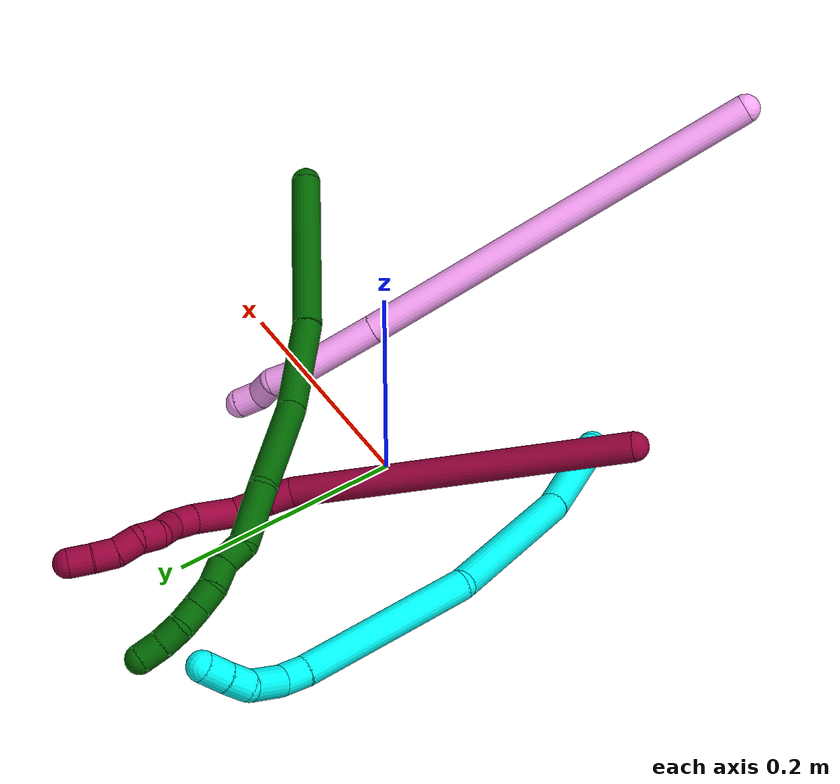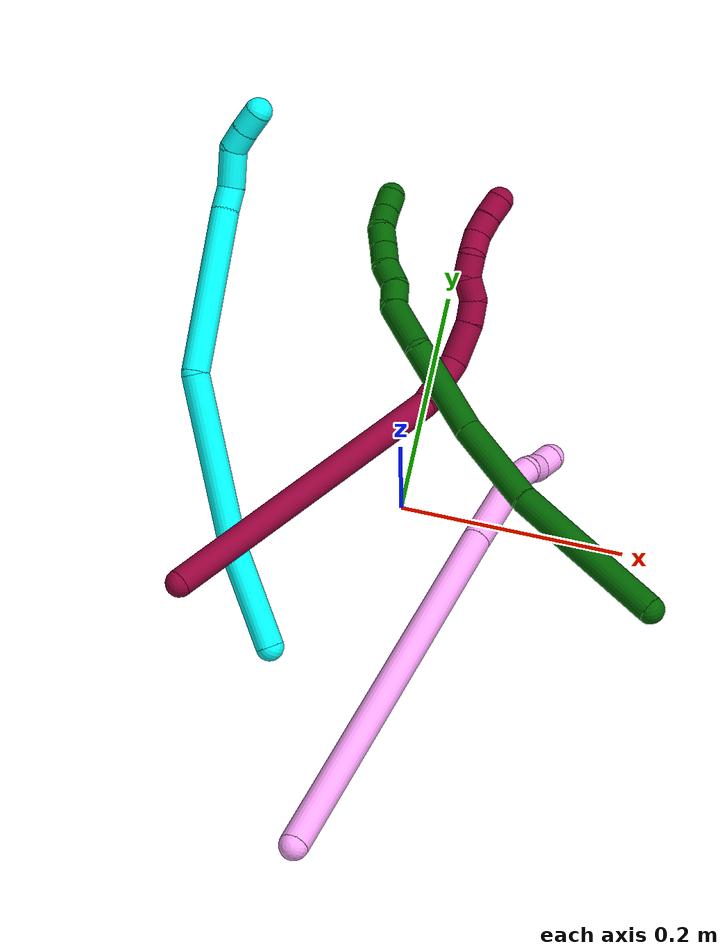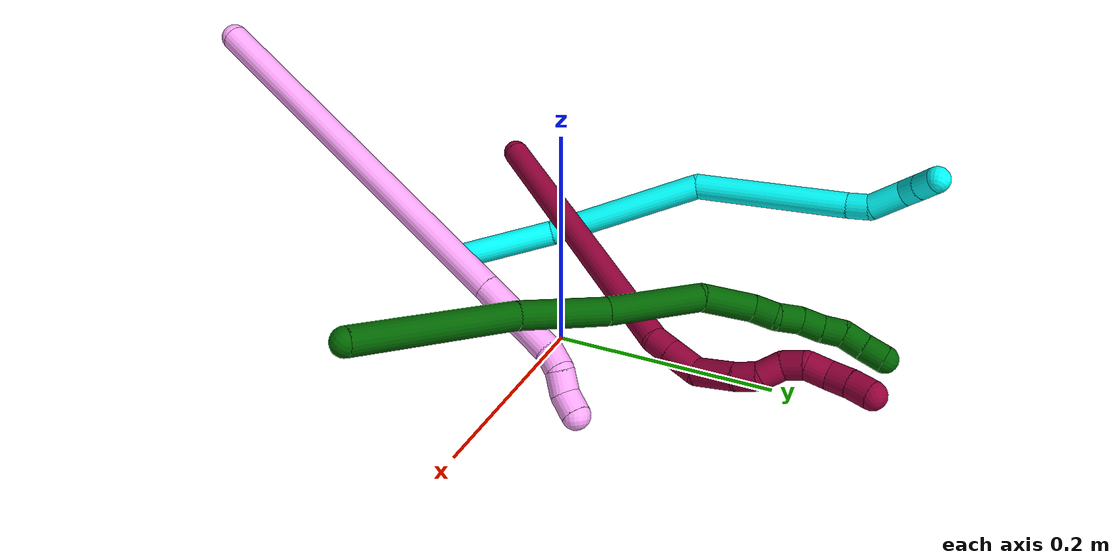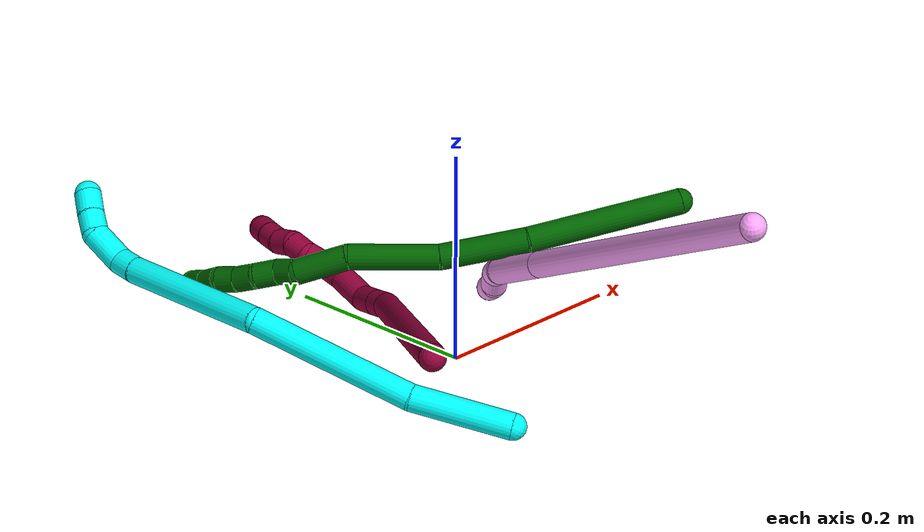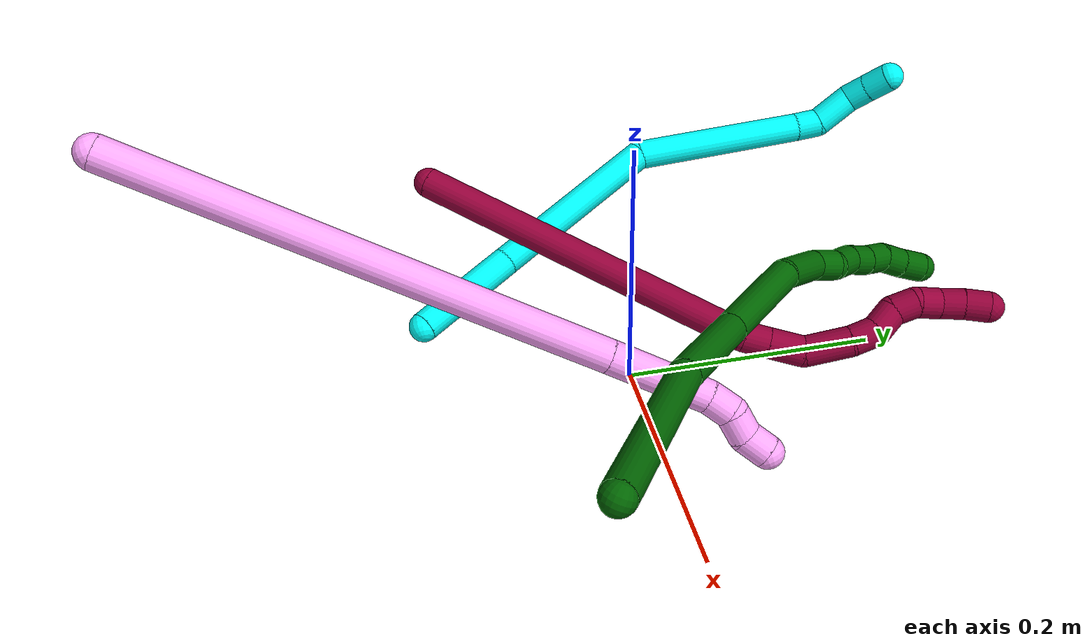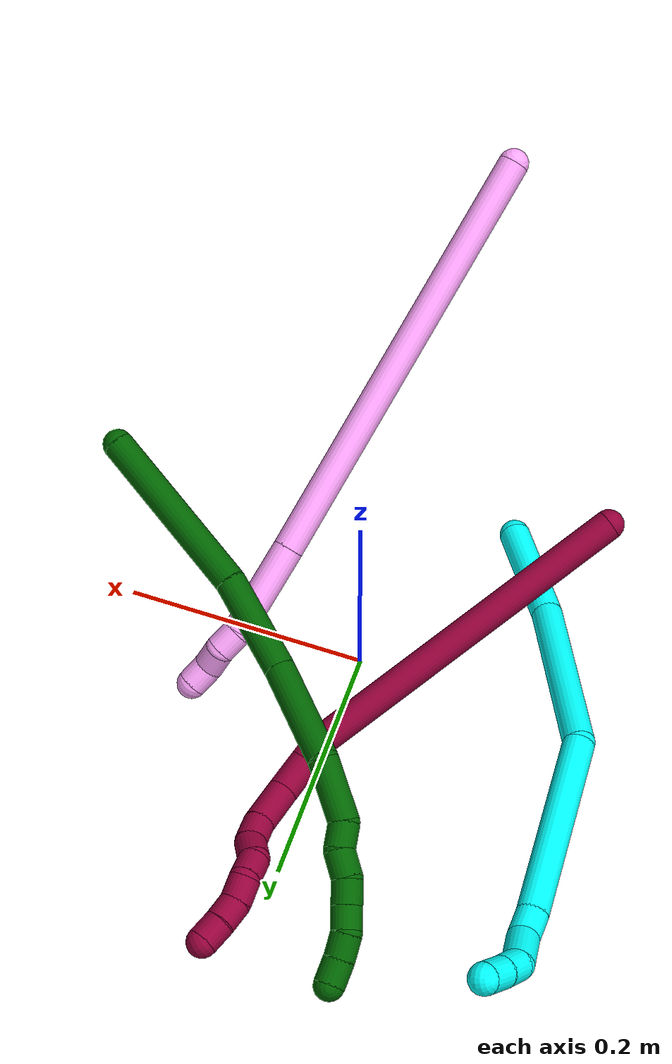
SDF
<sdf version="1.7">
 <world name="default">
  <model name="3">
   <static>0</static>
   <link name="3">
    <collision name="collision-cylinder-e_1_1_4">
     <pose>-0.010146 0.037655 0.026196 -0.96298 -0.217681 0.114067</pose>
     <geometry><cylinder><radius>0.0125</radius><length>0.093959</length></cylinder></geometry>
     <surface>
      <friction><ode><mu>1.16</mu><mu2>1.16</mu2><slip1>0</slip1><slip2>0</slip2></ode></friction>
      <contact><ode><kp>1e+06</kp><kd>1</kd><max_vel>0</max_vel><min_depth>0.001</min_depth></ode></contact>
     </surface>
    </collision>
    <visual name="visual-cylinder-e_1_1_4">
     <pose>-0.010146 0.037655 0.026196 -0.96298 -0.217681 0.114067</pose>
     <geometry><cylinder><radius>0.0125</radius><length>0.093959</length></cylinder></geometry>
     <material><ambient>0.003922 1 0.996078 1</ambient></material>
    </visual>
    <collision name="collision-cylinder-e_2_4_5">
     <pose>-0.023639 0.142238 0.09208 -1.03553 -0.042992 0.024491</pose>
     <geometry><cylinder><radius>0.0125</radius><length>0.155765</length></cylinder></geometry>
     <surface>
      <friction><ode><mu>1.16</mu><mu2>1.16</mu2><slip1>0</slip1><slip2>0</slip2></ode></friction>
      <contact><ode><kp>1e+06</kp><kd>1</kd><max_vel>0</max_vel><min_depth>0.001</min_depth></ode></contact>
     </surface>
    </collision>
    <visual name="visual-cylinder-e_2_4_5">
     <pose>-0.023639 0.142238 0.09208 -1.03553 -0.042992 0.024491</pose>
     <geometry><cylinder><radius>0.0125</radius><length>0.155765</length></cylinder></geometry>
     <material><ambient>0.003922 1 0.996078 1</ambient></material>
    </visual>
    <collision name="collision-cylinder-e_3_5_6">
     <pose>-0.037192 0.283541 0.136069 -1.51305 -0.13614 0.128518</pose>
     <geometry><cylinder><radius>0.0125</radius><length>0.15039</length></cylinder></geometry>
     <surface>
      <friction><ode><mu>1.16</mu><mu2>1.16</mu2><slip1>0</slip1><slip2>0</slip2></ode></friction>
      <contact><ode><kp>1e+06</kp><kd>1</kd><max_vel>0</max_vel><min_depth>0.001</min_depth></ode></contact>
     </surface>
    </collision>
    <visual name="visual-cylinder-e_3_5_6">
     <pose>-0.037192 0.283541 0.136069 -1.51305 -0.13614 0.128518</pose>
     <geometry><cylinder><radius>0.0125</radius><length>0.15039</length></cylinder></geometry>
     <material><ambient>0.003922 1 0.996078 1</ambient></material>
    </visual>
    <collision name="collision-cylinder-e_4_6_7">
     <pose>-0.047616 0.368954 0.140711 -1.53979 -0.019822 0.019216</pose>
     <geometry><cylinder><radius>0.0125</radius><length>0.022091</length></cylinder></geometry>
     <surface>
      <friction><ode><mu>1.16</mu><mu2>1.16</mu2><slip1>0</slip1><slip2>0</slip2></ode></friction>
      <contact><ode><kp>1e+06</kp><kd>1</kd><max_vel>0</max_vel><min_depth>0.001</min_depth></ode></contact>
     </surface>
    </collision>
    <visual name="visual-cylinder-e_4_6_7">
     <pose>-0.047616 0.368954 0.140711 -1.53979 -0.019822 0.019216</pose>
     <geometry><cylinder><radius>0.0125</radius><length>0.022091</length></cylinder></geometry>
     <material><ambient>0.003922 1 0.996078 1</ambient></material>
    </visual>
    <collision name="collision-cylinder-e_5_7_8">
     <pose>-0.042788 0.39557 0.147609 -1.17247 0.290194 -0.193481</pose>
     <geometry><cylinder><radius>0.0125</radius><length>0.035278</length></cylinder></geometry>
     <surface>
      <friction><ode><mu>1.16</mu><mu2>1.16</mu2><slip1>0</slip1><slip2>0</slip2></ode></friction>
      <contact><ode><kp>1e+06</kp><kd>1</kd><max_vel>0</max_vel><min_depth>0.001</min_depth></ode></contact>
     </surface>
    </collision>
    <visual name="visual-cylinder-e_5_7_8">
     <pose>-0.042788 0.39557 0.147609 -1.17247 0.290194 -0.193481</pose>
     <geometry><cylinder><radius>0.0125</radius><length>0.035278</length></cylinder></geometry>
     <material><ambient>0.003922 1 0.996078 1</ambient></material>
    </visual>
    <collision name="collision-cylinder-e_6_8_9">
     <pose>-0.031411 0.419367 0.154157 -1.57173 0.656287 -0.656855</pose>
     <geometry><cylinder><radius>0.0125</radius><length>0.020748</length></cylinder></geometry>
     <surface>
      <friction><ode><mu>1.16</mu><mu2>1.16</mu2><slip1>0</slip1><slip2>0</slip2></ode></friction>
      <contact><ode><kp>1e+06</kp><kd>1</kd><max_vel>0</max_vel><min_depth>0.001</min_depth></ode></contact>
     </surface>
    </collision>
    <visual name="visual-cylinder-e_6_8_9">
     <pose>-0.031411 0.419367 0.154157 -1.57173 0.656287 -0.656855</pose>
     <geometry><cylinder><radius>0.0125</radius><length>0.020748</length></cylinder></geometry>
     <material><ambient>0.003922 1 0.996078 1</ambient></material>
    </visual>
    <collision name="collision-cylinder-e_7_9_2">
     <pose>-0.01798 0.435822 0.153676 -1.62825 0.71075 -0.749075</pose>
     <geometry><cylinder><radius>0.0125</radius><length>0.021769</length></cylinder></geometry>
     <surface>
      <friction><ode><mu>1.16</mu><mu2>1.16</mu2><slip1>0</slip1><slip2>0</slip2></ode></friction>
      <contact><ode><kp>1e+06</kp><kd>1</kd><max_vel>0</max_vel><min_depth>0.001</min_depth></ode></contact>
     </surface>
    </collision>
    <visual name="visual-cylinder-e_7_9_2">
     <pose>-0.01798 0.435822 0.153676 -1.62825 0.71075 -0.749075</pose>
     <geometry><cylinder><radius>0.0125</radius><length>0.021769</length></cylinder></geometry>
     <material><ambient>0.003922 1 0.996078 1</ambient></material>
    </visual>
    <collision name="collision-sphere-2">
     <pose>-0.010879 0.444057 0.153202 0 -0 0</pose>
     <geometry><sphere><radius>0.0125</radius></sphere></geometry>
     <surface>
      <friction><ode><mu>1.16</mu><mu2>1.16</mu2><slip1>0</slip1><slip2>0</slip2></ode></friction>
      <contact><ode><kp>1e+06</kp><kd>1</kd><max_vel>0</max_vel><min_depth>0.001</min_depth></ode></contact>
     </surface>
    </collision>
    <visual name="visual-sphere-2">
     <pose>-0.010879 0.444057 0.153202 0 -0 0</pose>
     <geometry><sphere><radius>0.0125</radius></sphere></geometry>
     <material><ambient>0.003922 1 0.996078 1</ambient></material>
    </visual>
    <collision name="collision-sphere-9">
     <pose>-0.025081 0.427586 0.154149 0 -0 0</pose>
     <geometry><sphere><radius>0.0125</radius></sphere></geometry>
     <surface>
      <friction><ode><mu>1.16</mu><mu2>1.16</mu2><slip1>0</slip1><slip2>0</slip2></ode></friction>
      <contact><ode><kp>1e+06</kp><kd>1</kd><max_vel>0</max_vel><min_depth>0.001</min_depth></ode></contact>
     </surface>
    </collision>
    <visual name="visual-sphere-9">
     <pose>-0.025081 0.427586 0.154149 0 -0 0</pose>
     <geometry><sphere><radius>0.0125</radius></sphere></geometry>
     <material><ambient>0.003922 1 0.996078 1</ambient></material>
    </visual>
    <collision name="collision-sphere-4">
     <pose>-0.020292 0.075311 0.052392 0 -0 0</pose>
     <geometry><sphere><radius>0.0125</radius></sphere></geometry>
     <surface>
      <friction><ode><mu>1.16</mu><mu2>1.16</mu2><slip1>0</slip1><slip2>0</slip2></ode></friction>
      <contact><ode><kp>1e+06</kp><kd>1</kd><max_vel>0</max_vel><min_depth>0.001</min_depth></ode></contact>
     </surface>
    </collision>
    <visual name="visual-sphere-4">
     <pose>-0.020292 0.075311 0.052392 0 -0 0</pose>
     <geometry><sphere><radius>0.0125</radius></sphere></geometry>
     <material><ambient>0.003922 1 0.996078 1</ambient></material>
    </visual>
    <collision name="collision-sphere-1">
     <geometry><sphere><radius>0.0125</radius></sphere></geometry>
     <surface>
      <friction><ode><mu>1.16</mu><mu2>1.16</mu2><slip1>0</slip1><slip2>0</slip2></ode></friction>
      <contact><ode><kp>1e+06</kp><kd>1</kd><max_vel>0</max_vel><min_depth>0.001</min_depth></ode></contact>
     </surface>
    </collision>
    <visual name="visual-sphere-1">
     <geometry><sphere><radius>0.0125</radius></sphere></geometry>
     <material><ambient>0.003922 1 0.996078 1</ambient></material>
    </visual>
    <collision name="collision-sphere-8">
     <pose>-0.037741 0.411148 0.154165 0 -0 0</pose>
     <geometry><sphere><radius>0.0125</radius></sphere></geometry>
     <surface>
      <friction><ode><mu>1.16</mu><mu2>1.16</mu2><slip1>0</slip1><slip2>0</slip2></ode></friction>
      <contact><ode><kp>1e+06</kp><kd>1</kd><max_vel>0</max_vel><min_depth>0.001</min_depth></ode></contact>
     </surface>
    </collision>
    <visual name="visual-sphere-8">
     <pose>-0.037741 0.411148 0.154165 0 -0 0</pose>
     <geometry><sphere><radius>0.0125</radius></sphere></geometry>
     <material><ambient>0.003922 1 0.996078 1</ambient></material>
    </visual>
    <collision name="collision-sphere-5">
     <pose>-0.026987 0.209166 0.131769 0 -0 0</pose>
     <geometry><sphere><radius>0.0125</radius></sphere></geometry>
     <surface>
      <friction><ode><mu>1.16</mu><mu2>1.16</mu2><slip1>0</slip1><slip2>0</slip2></ode></friction>
      <contact><ode><kp>1e+06</kp><kd>1</kd><max_vel>0</max_vel><min_depth>0.001</min_depth></ode></contact>
     </surface>
    </collision>
    <visual name="visual-sphere-5">
     <pose>-0.026987 0.209166 0.131769 0 -0 0</pose>
     <geometry><sphere><radius>0.0125</radius></sphere></geometry>
     <material><ambient>0.003922 1 0.996078 1</ambient></material>
    </visual>
    <collision name="collision-sphere-6">
     <pose>-0.047397 0.357916 0.140369 0 -0 0</pose>
     <geometry><sphere><radius>0.0125</radius></sphere></geometry>
     <surface>
      <friction><ode><mu>1.16</mu><mu2>1.16</mu2><slip1>0</slip1><slip2>0</slip2></ode></friction>
      <contact><ode><kp>1e+06</kp><kd>1</kd><max_vel>0</max_vel><min_depth>0.001</min_depth></ode></contact>
     </surface>
    </collision>
    <visual name="visual-sphere-6">
     <pose>-0.047397 0.357916 0.140369 0 -0 0</pose>
     <geometry><sphere><radius>0.0125</radius></sphere></geometry>
     <material><ambient>0.003922 1 0.996078 1</ambient></material>
    </visual>
    <collision name="collision-sphere-7">
     <pose>-0.047835 0.379992 0.141054 0 -0 0</pose>
     <geometry><sphere><radius>0.0125</radius></sphere></geometry>
     <surface>
      <friction><ode><mu>1.16</mu><mu2>1.16</mu2><slip1>0</slip1><slip2>0</slip2></ode></friction>
      <contact><ode><kp>1e+06</kp><kd>1</kd><max_vel>0</max_vel><min_depth>0.001</min_depth></ode></contact>
     </surface>
    </collision>
    <visual name="visual-sphere-7">
     <pose>-0.047835 0.379992 0.141054 0 -0 0</pose>
     <geometry><sphere><radius>0.0125</radius></sphere></geometry>
     <material><ambient>0.003922 1 0.996078 1</ambient></material>
    </visual>
    <inertial>
     <pose>-0.027667 0.217259 0.104254 0 -0 0</pose>
     <mass>0.5</mass>
     <inertia>
      <ixx>0.000733</ixx>
      <ixy>0</ixy>
      <ixz>0</ixz>
      <iyy>0.000317</iyy>
      <iyz>0</iyz>
      <izz>-0.000552</izz>
     </inertia>
    </inertial>
   </link>
   <pose>-0.085157 -0.151403 0.011499 0.229233 -0.99856 -0.260693</pose>
  </model>
  <model name="4">
   <static>0</static>
   <link name="4">
    <collision name="collision-cylinder-e_1_1_4">
     <pose>0.002408 0.125193 -0.129861 -2.37449 0.01335 -0.033079</pose>
     <geometry><cylinder><radius>0.0125</radius><length>0.360792</length></cylinder></geometry>
     <surface>
      <friction><ode><mu>1.16</mu><mu2>1.16</mu2><slip1>0</slip1><slip2>0</slip2></ode></friction>
      <contact><ode><kp>1e+06</kp><kd>1</kd><max_vel>0</max_vel><min_depth>0.001</min_depth></ode></contact>
     </surface>
    </collision>
    <visual name="visual-cylinder-e_1_1_4">
     <pose>0.002408 0.125193 -0.129861 -2.37449 0.01335 -0.033079</pose>
     <geometry><cylinder><radius>0.0125</radius><length>0.360792</length></cylinder></geometry>
     <material><ambient>1 0.65098 0.996078 1</ambient></material>
    </visual>
    <collision name="collision-cylinder-e_2_4_5">
     <pose>0.005937 0.277446 -0.288179 -2.38136 0.028537 -0.071397</pose>
     <geometry><cylinder><radius>0.0125</radius><length>0.078572</length></cylinder></geometry>
     <surface>
      <friction><ode><mu>1.16</mu><mu2>1.16</mu2><slip1>0</slip1><slip2>0</slip2></ode></friction>
      <contact><ode><kp>1e+06</kp><kd>1</kd><max_vel>0</max_vel><min_depth>0.001</min_depth></ode></contact>
     </surface>
    </collision>
    <visual name="visual-cylinder-e_2_4_5">
     <pose>0.005937 0.277446 -0.288179 -2.38136 0.028537 -0.071397</pose>
     <geometry><cylinder><radius>0.0125</radius><length>0.078572</length></cylinder></geometry>
     <material><ambient>1 0.65098 0.996078 1</ambient></material>
    </visual>
    <collision name="collision-cylinder-e_3_5_6">
     <pose>0.009471 0.309793 -0.324791 -2.56636 0.243418 -0.784136</pose>
     <geometry><cylinder><radius>0.0125</radius><length>0.020025</length></cylinder></geometry>
     <surface>
      <friction><ode><mu>1.16</mu><mu2>1.16</mu2><slip1>0</slip1><slip2>0</slip2></ode></friction>
      <contact><ode><kp>1e+06</kp><kd>1</kd><max_vel>0</max_vel><min_depth>0.001</min_depth></ode></contact>
     </surface>
    </collision>
    <visual name="visual-cylinder-e_3_5_6">
     <pose>0.009471 0.309793 -0.324791 -2.56636 0.243418 -0.784136</pose>
     <geometry><cylinder><radius>0.0125</radius><length>0.020025</length></cylinder></geometry>
     <material><ambient>1 0.65098 0.996078 1</ambient></material>
    </visual>
    <collision name="collision-cylinder-e_4_6_7">
     <pose>0.011745 0.316365 -0.343088 -3.0155 -0.013694 0.216081</pose>
     <geometry><cylinder><radius>0.0125</radius><length>0.020452</length></cylinder></geometry>
     <surface>
      <friction><ode><mu>1.16</mu><mu2>1.16</mu2><slip1>0</slip1><slip2>0</slip2></ode></friction>
      <contact><ode><kp>1e+06</kp><kd>1</kd><max_vel>0</max_vel><min_depth>0.001</min_depth></ode></contact>
     </surface>
    </collision>
    <visual name="visual-cylinder-e_4_6_7">
     <pose>0.011745 0.316365 -0.343088 -3.0155 -0.013694 0.216081</pose>
     <geometry><cylinder><radius>0.0125</radius><length>0.020452</length></cylinder></geometry>
     <material><ambient>1 0.65098 0.996078 1</ambient></material>
    </visual>
    <collision name="collision-cylinder-e_5_7_2">
     <pose>0.013702 0.322766 -0.361659 -2.59609 0.209675 -0.719592</pose>
     <geometry><cylinder><radius>0.0125</radius><length>0.020159</length></cylinder></geometry>
     <surface>
      <friction><ode><mu>1.16</mu><mu2>1.16</mu2><slip1>0</slip1><slip2>0</slip2></ode></friction>
      <contact><ode><kp>1e+06</kp><kd>1</kd><max_vel>0</max_vel><min_depth>0.001</min_depth></ode></contact>
     </surface>
    </collision>
    <visual name="visual-cylinder-e_5_7_2">
     <pose>0.013702 0.322766 -0.361659 -2.59609 0.209675 -0.719592</pose>
     <geometry><cylinder><radius>0.0125</radius><length>0.020159</length></cylinder></geometry>
     <material><ambient>1 0.65098 0.996078 1</ambient></material>
    </visual>
    <collision name="collision-sphere-2">
     <pose>0.0158 0.327882 -0.370087 0 -0 0</pose>
     <geometry><sphere><radius>0.0125</radius></sphere></geometry>
     <surface>
      <friction><ode><mu>1.16</mu><mu2>1.16</mu2><slip1>0</slip1><slip2>0</slip2></ode></friction>
      <contact><ode><kp>1e+06</kp><kd>1</kd><max_vel>0</max_vel><min_depth>0.001</min_depth></ode></contact>
     </surface>
    </collision>
    <visual name="visual-sphere-2">
     <pose>0.0158 0.327882 -0.370087 0 -0 0</pose>
     <geometry><sphere><radius>0.0125</radius></sphere></geometry>
     <material><ambient>1 0.65098 0.996078 1</ambient></material>
    </visual>
    <collision name="collision-sphere-7">
     <pose>0.011605 0.317651 -0.353231 0 -0 0</pose>
     <geometry><sphere><radius>0.0125</radius></sphere></geometry>
     <surface>
      <friction><ode><mu>1.16</mu><mu2>1.16</mu2><slip1>0</slip1><slip2>0</slip2></ode></friction>
      <contact><ode><kp>1e+06</kp><kd>1</kd><max_vel>0</max_vel><min_depth>0.001</min_depth></ode></contact>
     </surface>
    </collision>
    <visual name="visual-sphere-7">
     <pose>0.011605 0.317651 -0.353231 0 -0 0</pose>
     <geometry><sphere><radius>0.0125</radius></sphere></geometry>
     <material><ambient>1 0.65098 0.996078 1</ambient></material>
    </visual>
    <collision name="collision-sphere-6">
     <pose>0.011885 0.315079 -0.332944 0 -0 0</pose>
     <geometry><sphere><radius>0.0125</radius></sphere></geometry>
     <surface>
      <friction><ode><mu>1.16</mu><mu2>1.16</mu2><slip1>0</slip1><slip2>0</slip2></ode></friction>
      <contact><ode><kp>1e+06</kp><kd>1</kd><max_vel>0</max_vel><min_depth>0.001</min_depth></ode></contact>
     </surface>
    </collision>
    <visual name="visual-sphere-6">
     <pose>0.011885 0.315079 -0.332944 0 -0 0</pose>
     <geometry><sphere><radius>0.0125</radius></sphere></geometry>
     <material><ambient>1 0.65098 0.996078 1</ambient></material>
    </visual>
    <collision name="collision-sphere-5">
     <pose>0.007058 0.304506 -0.316637 0 -0 0</pose>
     <geometry><sphere><radius>0.0125</radius></sphere></geometry>
     <surface>
      <friction><ode><mu>1.16</mu><mu2>1.16</mu2><slip1>0</slip1><slip2>0</slip2></ode></friction>
      <contact><ode><kp>1e+06</kp><kd>1</kd><max_vel>0</max_vel><min_depth>0.001</min_depth></ode></contact>
     </surface>
    </collision>
    <visual name="visual-sphere-5">
     <pose>0.007058 0.304506 -0.316637 0 -0 0</pose>
     <geometry><sphere><radius>0.0125</radius></sphere></geometry>
     <material><ambient>1 0.65098 0.996078 1</ambient></material>
    </visual>
    <collision name="collision-sphere-1">
     <geometry><sphere><radius>0.0125</radius></sphere></geometry>
     <surface>
      <friction><ode><mu>1.16</mu><mu2>1.16</mu2><slip1>0</slip1><slip2>0</slip2></ode></friction>
      <contact><ode><kp>1e+06</kp><kd>1</kd><max_vel>0</max_vel><min_depth>0.001</min_depth></ode></contact>
     </surface>
    </collision>
    <visual name="visual-sphere-1">
     <geometry><sphere><radius>0.0125</radius></sphere></geometry>
     <material><ambient>1 0.65098 0.996078 1</ambient></material>
    </visual>
    <collision name="collision-sphere-4">
     <pose>0.004816 0.250385 -0.259721 0 -0 0</pose>
     <geometry><sphere><radius>0.0125</radius></sphere></geometry>
     <surface>
      <friction><ode><mu>1.16</mu><mu2>1.16</mu2><slip1>0</slip1><slip2>0</slip2></ode></friction>
      <contact><ode><kp>1e+06</kp><kd>1</kd><max_vel>0</max_vel><min_depth>0.001</min_depth></ode></contact>
     </surface>
    </collision>
    <visual name="visual-sphere-4">
     <pose>0.004816 0.250385 -0.259721 0 -0 0</pose>
     <geometry><sphere><radius>0.0125</radius></sphere></geometry>
     <material><ambient>1 0.65098 0.996078 1</ambient></material>
    </visual>
    <inertial>
     <pose>0.004083 0.172297 -0.180614 0 -0 0</pose>
     <mass>0.5</mass>
     <inertia>
      <ixx>0.003839</ixx>
      <ixy>0</ixy>
      <ixz>0</ixz>
      <iyy>-0.002968</iyy>
      <iyz>0</iyz>
      <izz>-0.002841</izz>
     </inertia>
    </inertial>
   </link>
   <pose>-0.010397 -0.350105 0.23761 0.308 -0.408848 -0.036571</pose>
  </model>
  <model name="6">
   <static>0</static>
   <link name="6">
    <collision name="collision-cylinder-e_1_1_4">
     <pose>-0.045567 0.053859 0.026339 -1.11596 -0.649885 0.414486</pose>
     <geometry><cylinder><radius>0.0125</radius><length>0.15061</length></cylinder></geometry>
     <surface>
      <friction><ode><mu>1.16</mu><mu2>1.16</mu2><slip1>0</slip1><slip2>0</slip2></ode></friction>
      <contact><ode><kp>1e+06</kp><kd>1</kd><max_vel>0</max_vel><min_depth>0.001</min_depth></ode></contact>
     </surface>
    </collision>
    <visual name="visual-cylinder-e_1_1_4">
     <pose>-0.045567 0.053859 0.026339 -1.11596 -0.649885 0.414486</pose>
     <geometry><cylinder><radius>0.0125</radius><length>0.15061</length></cylinder></geometry>
     <material><ambient>0 0.392157 0.003922 1</ambient></material>
    </visual>
    <collision name="collision-cylinder-e_2_4_5">
     <pose>-0.110562 0.141254 0.068339 -1.13391 -0.483393 0.311363</pose>
     <geometry><cylinder><radius>0.0125</radius><length>0.083604</length></cylinder></geometry>
     <surface>
      <friction><ode><mu>1.16</mu><mu2>1.16</mu2><slip1>0</slip1><slip2>0</slip2></ode></friction>
      <contact><ode><kp>1e+06</kp><kd>1</kd><max_vel>0</max_vel><min_depth>0.001</min_depth></ode></contact>
     </surface>
    </collision>
    <visual name="visual-cylinder-e_2_4_5">
     <pose>-0.110562 0.141254 0.068339 -1.13391 -0.483393 0.311363</pose>
     <geometry><cylinder><radius>0.0125</radius><length>0.083604</length></cylinder></geometry>
     <material><ambient>0 0.392157 0.003922 1</ambient></material>
    </visual>
    <collision name="collision-cylinder-e_3_5_6">
     <pose>-0.145783 0.207707 0.107161 -0.957626 -0.373894 0.195755</pose>
     <geometry><cylinder><radius>0.0125</radius><length>0.086473</length></cylinder></geometry>
     <surface>
      <friction><ode><mu>1.16</mu><mu2>1.16</mu2><slip1>0</slip1><slip2>0</slip2></ode></friction>
      <contact><ode><kp>1e+06</kp><kd>1</kd><max_vel>0</max_vel><min_depth>0.001</min_depth></ode></contact>
     </surface>
    </collision>
    <visual name="visual-cylinder-e_3_5_6">
     <pose>-0.145783 0.207707 0.107161 -0.957626 -0.373894 0.195755</pose>
     <geometry><cylinder><radius>0.0125</radius><length>0.086473</length></cylinder></geometry>
     <material><ambient>0 0.392157 0.003922 1</ambient></material>
    </visual>
    <collision name="collision-cylinder-e_4_6_7">
     <pose>-0.169815 0.264256 0.136551 -1.31313 -0.325201 0.251505</pose>
     <geometry><cylinder><radius>0.0125</radius><length>0.051582</length></cylinder></geometry>
     <surface>
      <friction><ode><mu>1.16</mu><mu2>1.16</mu2><slip1>0</slip1><slip2>0</slip2></ode></friction>
      <contact><ode><kp>1e+06</kp><kd>1</kd><max_vel>0</max_vel><min_depth>0.001</min_depth></ode></contact>
     </surface>
    </collision>
    <visual name="visual-cylinder-e_4_6_7">
     <pose>-0.169815 0.264256 0.136551 -1.31313 -0.325201 0.251505</pose>
     <geometry><cylinder><radius>0.0125</radius><length>0.051582</length></cylinder></geometry>
     <material><ambient>0 0.392157 0.003922 1</ambient></material>
    </visual>
    <collision name="collision-cylinder-e_5_7_8">
     <pose>-0.176065 0.298211 0.146122 -1.25754 0.181431 -0.132112</pose>
     <geometry><cylinder><radius>0.0125</radius><length>0.022063</length></cylinder></geometry>
     <surface>
      <friction><ode><mu>1.16</mu><mu2>1.16</mu2><slip1>0</slip1><slip2>0</slip2></ode></friction>
      <contact><ode><kp>1e+06</kp><kd>1</kd><max_vel>0</max_vel><min_depth>0.001</min_depth></ode></contact>
     </surface>
    </collision>
    <visual name="visual-cylinder-e_5_7_8">
     <pose>-0.176065 0.298211 0.146122 -1.25754 0.181431 -0.132112</pose>
     <geometry><cylinder><radius>0.0125</radius><length>0.022063</length></cylinder></geometry>
     <material><ambient>0 0.392157 0.003922 1</ambient></material>
    </visual>
    <collision name="collision-cylinder-e_6_8_9">
     <pose>-0.177148 0.318988 0.153204 -1.22737 -0.270107 0.190853</pose>
     <geometry><cylinder><radius>0.0125</radius><length>0.02304</length></cylinder></geometry>
     <surface>
      <friction><ode><mu>1.16</mu><mu2>1.16</mu2><slip1>0</slip1><slip2>0</slip2></ode></friction>
      <contact><ode><kp>1e+06</kp><kd>1</kd><max_vel>0</max_vel><min_depth>0.001</min_depth></ode></contact>
     </surface>
    </collision>
    <visual name="visual-cylinder-e_6_8_9">
     <pose>-0.177148 0.318988 0.153204 -1.22737 -0.270107 0.190853</pose>
     <geometry><cylinder><radius>0.0125</radius><length>0.02304</length></cylinder></geometry>
     <material><ambient>0 0.392157 0.003922 1</ambient></material>
    </visual>
    <collision name="collision-cylinder-e_7_9_10">
     <pose>-0.179936 0.339549 0.159329 -1.33898 0.027565 -0.021816</pose>
     <geometry><cylinder><radius>0.0125</radius><length>0.020778</length></cylinder></geometry>
     <surface>
      <friction><ode><mu>1.16</mu><mu2>1.16</mu2><slip1>0</slip1><slip2>0</slip2></ode></friction>
      <contact><ode><kp>1e+06</kp><kd>1</kd><max_vel>0</max_vel><min_depth>0.001</min_depth></ode></contact>
     </surface>
    </collision>
    <visual name="visual-cylinder-e_7_9_10">
     <pose>-0.179936 0.339549 0.159329 -1.33898 0.027565 -0.021816</pose>
     <geometry><cylinder><radius>0.0125</radius><length>0.020778</length></cylinder></geometry>
     <material><ambient>0 0.392157 0.003922 1</ambient></material>
    </visual>
    <collision name="collision-cylinder-e_8_10_11">
     <pose>-0.179486 0.359007 0.165486 -1.18742 0.01619 -0.010927</pose>
     <geometry><cylinder><radius>0.0125</radius><length>0.020166</length></cylinder></geometry>
     <surface>
      <friction><ode><mu>1.16</mu><mu2>1.16</mu2><slip1>0</slip1><slip2>0</slip2></ode></friction>
      <contact><ode><kp>1e+06</kp><kd>1</kd><max_vel>0</max_vel><min_depth>0.001</min_depth></ode></contact>
     </surface>
    </collision>
    <visual name="visual-cylinder-e_8_10_11">
     <pose>-0.179486 0.359007 0.165486 -1.18742 0.01619 -0.010927</pose>
     <geometry><cylinder><radius>0.0125</radius><length>0.020166</length></cylinder></geometry>
     <material><ambient>0 0.392157 0.003922 1</ambient></material>
    </visual>
    <collision name="collision-cylinder-e_9_11_12">
     <pose>-0.176656 0.378335 0.170108 -1.48575 0.260279 -0.239243</pose>
     <geometry><cylinder><radius>0.0125</radius><length>0.020728</length></cylinder></geometry>
     <surface>
      <friction><ode><mu>1.16</mu><mu2>1.16</mu2><slip1>0</slip1><slip2>0</slip2></ode></friction>
      <contact><ode><kp>1e+06</kp><kd>1</kd><max_vel>0</max_vel><min_depth>0.001</min_depth></ode></contact>
     </surface>
    </collision>
    <visual name="visual-cylinder-e_9_11_12">
     <pose>-0.176656 0.378335 0.170108 -1.48575 0.260279 -0.239243</pose>
     <geometry><cylinder><radius>0.0125</radius><length>0.020728</length></cylinder></geometry>
     <material><ambient>0 0.392157 0.003922 1</ambient></material>
    </visual>
    <collision name="collision-cylinder-e_10_12_2">
     <pose>-0.170235 0.397936 0.172718 -1.38995 0.366398 -0.30652</pose>
     <geometry><cylinder><radius>0.0125</radius><length>0.020956</length></cylinder></geometry>
     <surface>
      <friction><ode><mu>1.16</mu><mu2>1.16</mu2><slip1>0</slip1><slip2>0</slip2></ode></friction>
      <contact><ode><kp>1e+06</kp><kd>1</kd><max_vel>0</max_vel><min_depth>0.001</min_depth></ode></contact>
     </surface>
    </collision>
    <visual name="visual-cylinder-e_10_12_2">
     <pose>-0.170235 0.397936 0.172718 -1.38995 0.366398 -0.30652</pose>
     <geometry><cylinder><radius>0.0125</radius><length>0.020956</length></cylinder></geometry>
     <material><ambient>0 0.392157 0.003922 1</ambient></material>
    </visual>
    <collision name="collision-sphere-2">
     <pose>-0.166481 0.407559 0.174477 0 -0 0</pose>
     <geometry><sphere><radius>0.0125</radius></sphere></geometry>
     <surface>
      <friction><ode><mu>1.16</mu><mu2>1.16</mu2><slip1>0</slip1><slip2>0</slip2></ode></friction>
      <contact><ode><kp>1e+06</kp><kd>1</kd><max_vel>0</max_vel><min_depth>0.001</min_depth></ode></contact>
     </surface>
    </collision>
    <visual name="visual-sphere-2">
     <pose>-0.166481 0.407559 0.174477 0 -0 0</pose>
     <geometry><sphere><radius>0.0125</radius></sphere></geometry>
     <material><ambient>0 0.392157 0.003922 1</ambient></material>
    </visual>
    <collision name="collision-sphere-12">
     <pose>-0.173989 0.388314 0.170958 0 -0 0</pose>
     <geometry><sphere><radius>0.0125</radius></sphere></geometry>
     <surface>
      <friction><ode><mu>1.16</mu><mu2>1.16</mu2><slip1>0</slip1><slip2>0</slip2></ode></friction>
      <contact><ode><kp>1e+06</kp><kd>1</kd><max_vel>0</max_vel><min_depth>0.001</min_depth></ode></contact>
     </surface>
    </collision>
    <visual name="visual-sphere-12">
     <pose>-0.173989 0.388314 0.170958 0 -0 0</pose>
     <geometry><sphere><radius>0.0125</radius></sphere></geometry>
     <material><ambient>0 0.392157 0.003922 1</ambient></material>
    </visual>
    <collision name="collision-sphere-11">
     <pose>-0.179323 0.368357 0.169257 0 -0 0</pose>
     <geometry><sphere><radius>0.0125</radius></sphere></geometry>
     <surface>
      <friction><ode><mu>1.16</mu><mu2>1.16</mu2><slip1>0</slip1><slip2>0</slip2></ode></friction>
      <contact><ode><kp>1e+06</kp><kd>1</kd><max_vel>0</max_vel><min_depth>0.001</min_depth></ode></contact>
     </surface>
    </collision>
    <visual name="visual-sphere-11">
     <pose>-0.179323 0.368357 0.169257 0 -0 0</pose>
     <geometry><sphere><radius>0.0125</radius></sphere></geometry>
     <material><ambient>0 0.392157 0.003922 1</ambient></material>
    </visual>
    <collision name="collision-sphere-10">
     <pose>-0.17965 0.349657 0.161715 0 -0 0</pose>
     <geometry><sphere><radius>0.0125</radius></sphere></geometry>
     <surface>
      <friction><ode><mu>1.16</mu><mu2>1.16</mu2><slip1>0</slip1><slip2>0</slip2></ode></friction>
      <contact><ode><kp>1e+06</kp><kd>1</kd><max_vel>0</max_vel><min_depth>0.001</min_depth></ode></contact>
     </surface>
    </collision>
    <visual name="visual-sphere-10">
     <pose>-0.17965 0.349657 0.161715 0 -0 0</pose>
     <geometry><sphere><radius>0.0125</radius></sphere></geometry>
     <material><ambient>0 0.392157 0.003922 1</ambient></material>
    </visual>
    <collision name="collision-sphere-9">
     <pose>-0.180222 0.329442 0.156942 0 -0 0</pose>
     <geometry><sphere><radius>0.0125</radius></sphere></geometry>
     <surface>
      <friction><ode><mu>1.16</mu><mu2>1.16</mu2><slip1>0</slip1><slip2>0</slip2></ode></friction>
      <contact><ode><kp>1e+06</kp><kd>1</kd><max_vel>0</max_vel><min_depth>0.001</min_depth></ode></contact>
     </surface>
    </collision>
    <visual name="visual-sphere-9">
     <pose>-0.180222 0.329442 0.156942 0 -0 0</pose>
     <geometry><sphere><radius>0.0125</radius></sphere></geometry>
     <material><ambient>0 0.392157 0.003922 1</ambient></material>
    </visual>
    <collision name="collision-sphere-4">
     <pose>-0.091133 0.107718 0.052678 0 -0 0</pose>
     <geometry><sphere><radius>0.0125</radius></sphere></geometry>
     <surface>
      <friction><ode><mu>1.16</mu><mu2>1.16</mu2><slip1>0</slip1><slip2>0</slip2></ode></friction>
      <contact><ode><kp>1e+06</kp><kd>1</kd><max_vel>0</max_vel><min_depth>0.001</min_depth></ode></contact>
     </surface>
    </collision>
    <visual name="visual-sphere-4">
     <pose>-0.091133 0.107718 0.052678 0 -0 0</pose>
     <geometry><sphere><radius>0.0125</radius></sphere></geometry>
     <material><ambient>0 0.392157 0.003922 1</ambient></material>
    </visual>
    <collision name="collision-sphere-1">
     <geometry><sphere><radius>0.0125</radius></sphere></geometry>
     <surface>
      <friction><ode><mu>1.16</mu><mu2>1.16</mu2><slip1>0</slip1><slip2>0</slip2></ode></friction>
      <contact><ode><kp>1e+06</kp><kd>1</kd><max_vel>0</max_vel><min_depth>0.001</min_depth></ode></contact>
     </surface>
    </collision>
    <visual name="visual-sphere-1">
     <geometry><sphere><radius>0.0125</radius></sphere></geometry>
     <material><ambient>0 0.392157 0.003922 1</ambient></material>
    </visual>
    <collision name="collision-sphere-8">
     <pose>-0.174074 0.308534 0.149466 0 -0 0</pose>
     <geometry><sphere><radius>0.0125</radius></sphere></geometry>
     <surface>
      <friction><ode><mu>1.16</mu><mu2>1.16</mu2><slip1>0</slip1><slip2>0</slip2></ode></friction>
      <contact><ode><kp>1e+06</kp><kd>1</kd><max_vel>0</max_vel><min_depth>0.001</min_depth></ode></contact>
     </surface>
    </collision>
    <visual name="visual-sphere-8">
     <pose>-0.174074 0.308534 0.149466 0 -0 0</pose>
     <geometry><sphere><radius>0.0125</radius></sphere></geometry>
     <material><ambient>0 0.392157 0.003922 1</ambient></material>
    </visual>
    <collision name="collision-sphere-5">
     <pose>-0.129991 0.17479 0.083999 0 -0 0</pose>
     <geometry><sphere><radius>0.0125</radius></sphere></geometry>
     <surface>
      <friction><ode><mu>1.16</mu><mu2>1.16</mu2><slip1>0</slip1><slip2>0</slip2></ode></friction>
      <contact><ode><kp>1e+06</kp><kd>1</kd><max_vel>0</max_vel><min_depth>0.001</min_depth></ode></contact>
     </surface>
    </collision>
    <visual name="visual-sphere-5">
     <pose>-0.129991 0.17479 0.083999 0 -0 0</pose>
     <geometry><sphere><radius>0.0125</radius></sphere></geometry>
     <material><ambient>0 0.392157 0.003922 1</ambient></material>
    </visual>
    <collision name="collision-sphere-6">
     <pose>-0.161575 0.240624 0.130323 0 -0 0</pose>
     <geometry><sphere><radius>0.0125</radius></sphere></geometry>
     <surface>
      <friction><ode><mu>1.16</mu><mu2>1.16</mu2><slip1>0</slip1><slip2>0</slip2></ode></friction>
      <contact><ode><kp>1e+06</kp><kd>1</kd><max_vel>0</max_vel><min_depth>0.001</min_depth></ode></contact>
     </surface>
    </collision>
    <visual name="visual-sphere-6">
     <pose>-0.161575 0.240624 0.130323 0 -0 0</pose>
     <geometry><sphere><radius>0.0125</radius></sphere></geometry>
     <material><ambient>0 0.392157 0.003922 1</ambient></material>
    </visual>
    <collision name="collision-sphere-7">
     <pose>-0.178055 0.287889 0.142779 0 -0 0</pose>
     <geometry><sphere><radius>0.0125</radius></sphere></geometry>
     <surface>
      <friction><ode><mu>1.16</mu><mu2>1.16</mu2><slip1>0</slip1><slip2>0</slip2></ode></friction>
      <contact><ode><kp>1e+06</kp><kd>1</kd><max_vel>0</max_vel><min_depth>0.001</min_depth></ode></contact>
     </surface>
    </collision>
    <visual name="visual-sphere-7">
     <pose>-0.178055 0.287889 0.142779 0 -0 0</pose>
     <geometry><sphere><radius>0.0125</radius></sphere></geometry>
     <material><ambient>0 0.392157 0.003922 1</ambient></material>
    </visual>
    <inertial>
     <pose>-0.120051 0.191836 0.093075 0 -0 0</pose>
     <mass>0.5</mass>
     <inertia>
      <ixx>0.000437</ixx>
      <ixy>0</ixy>
      <ixz>0</ixz>
      <iyy>0.000403</iyy>
      <iyz>0</iyz>
      <izz>-7.7e-05</izz>
     </inertia>
    </inertial>
   </link>
   <pose>0.232674 -0.069697 0.1078 -0.583764 -0.1023 0.367899</pose>
  </model>
  <model name="8">
   <static>0</static>
   <link name="8">
    <collision name="collision-cylinder-e_1_1_4">
     <pose>0.025119 0.038528 -0.136578 -2.86664 0.175193 -1.13121</pose>
     <geometry><cylinder><radius>0.0125</radius><length>0.288228</length></cylinder></geometry>
     <surface>
      <friction><ode><mu>1.16</mu><mu2>1.16</mu2><slip1>0</slip1><slip2>0</slip2></ode></friction>
      <contact><ode><kp>1e+06</kp><kd>1</kd><max_vel>0</max_vel><min_depth>0.001</min_depth></ode></contact>
     </surface>
    </collision>
    <visual name="visual-cylinder-e_1_1_4">
     <pose>0.025119 0.038528 -0.136578 -2.86664 0.175193 -1.13121</pose>
     <geometry><cylinder><radius>0.0125</radius><length>0.288228</length></cylinder></geometry>
     <material><ambient>0.584314 0 0.227451 1</ambient></material>
    </visual>
    <collision name="collision-cylinder-e_2_4_5">
     <pose>0.051173 0.082539 -0.28178 -2.5753 0.091229 -0.311224</pose>
     <geometry><cylinder><radius>0.0125</radius><length>0.020526</length></cylinder></geometry>
     <surface>
      <friction><ode><mu>1.16</mu><mu2>1.16</mu2><slip1>0</slip1><slip2>0</slip2></ode></friction>
      <contact><ode><kp>1e+06</kp><kd>1</kd><max_vel>0</max_vel><min_depth>0.001</min_depth></ode></contact>
     </surface>
    </collision>
    <visual name="visual-cylinder-e_2_4_5">
     <pose>0.051173 0.082539 -0.28178 -2.5753 0.091229 -0.311224</pose>
     <geometry><cylinder><radius>0.0125</radius><length>0.020526</length></cylinder></geometry>
     <material><ambient>0.584314 0 0.227451 1</ambient></material>
    </visual>
    <collision name="collision-cylinder-e_3_5_6">
     <pose>0.053561 0.096129 -0.302916 -2.56664 0.097214 -0.32613</pose>
     <geometry><cylinder><radius>0.0125</radius><length>0.029956</length></cylinder></geometry>
     <surface>
      <friction><ode><mu>1.16</mu><mu2>1.16</mu2><slip1>0</slip1><slip2>0</slip2></ode></friction>
      <contact><ode><kp>1e+06</kp><kd>1</kd><max_vel>0</max_vel><min_depth>0.001</min_depth></ode></contact>
     </surface>
    </collision>
    <visual name="visual-cylinder-e_3_5_6">
     <pose>0.053561 0.096129 -0.302916 -2.56664 0.097214 -0.32613</pose>
     <geometry><cylinder><radius>0.0125</radius><length>0.029956</length></cylinder></geometry>
     <material><ambient>0.584314 0 0.227451 1</ambient></material>
    </visual>
    <collision name="collision-cylinder-e_4_6_7">
     <pose>0.063201 0.118042 -0.32562 -2.20683 0.445061 -0.842987</pose>
     <geometry><cylinder><radius>0.0125</radius><length>0.038029</length></cylinder></geometry>
     <surface>
      <friction><ode><mu>1.16</mu><mu2>1.16</mu2><slip1>0</slip1><slip2>0</slip2></ode></friction>
      <contact><ode><kp>1e+06</kp><kd>1</kd><max_vel>0</max_vel><min_depth>0.001</min_depth></ode></contact>
     </surface>
    </collision>
    <visual name="visual-cylinder-e_4_6_7">
     <pose>0.063201 0.118042 -0.32562 -2.20683 0.445061 -0.842987</pose>
     <geometry><cylinder><radius>0.0125</radius><length>0.038029</length></cylinder></geometry>
     <material><ambient>0.584314 0 0.227451 1</ambient></material>
    </visual>
    <collision name="collision-cylinder-e_5_7_8">
     <pose>0.075352 0.140796 -0.339828 -1.99239 0.384216 -0.583657</pose>
     <geometry><cylinder><radius>0.0125</radius><length>0.021158</length></cylinder></geometry>
     <surface>
      <friction><ode><mu>1.16</mu><mu2>1.16</mu2><slip1>0</slip1><slip2>0</slip2></ode></friction>
      <contact><ode><kp>1e+06</kp><kd>1</kd><max_vel>0</max_vel><min_depth>0.001</min_depth></ode></contact>
     </surface>
    </collision>
    <visual name="visual-cylinder-e_5_7_8">
     <pose>0.075352 0.140796 -0.339828 -1.99239 0.384216 -0.583657</pose>
     <geometry><cylinder><radius>0.0125</radius><length>0.021158</length></cylinder></geometry>
     <material><ambient>0.584314 0 0.227451 1</ambient></material>
    </visual>
    <collision name="collision-cylinder-e_6_8_9">
     <pose>0.082647 0.160164 -0.342862 -1.47707 0.308067 -0.280846</pose>
     <geometry><cylinder><radius>0.0125</radius><length>0.021963</length></cylinder></geometry>
     <surface>
      <friction><ode><mu>1.16</mu><mu2>1.16</mu2><slip1>0</slip1><slip2>0</slip2></ode></friction>
      <contact><ode><kp>1e+06</kp><kd>1</kd><max_vel>0</max_vel><min_depth>0.001</min_depth></ode></contact>
     </surface>
    </collision>
    <visual name="visual-cylinder-e_6_8_9">
     <pose>0.082647 0.160164 -0.342862 -1.47707 0.308067 -0.280846</pose>
     <geometry><cylinder><radius>0.0125</radius><length>0.021963</length></cylinder></geometry>
     <material><ambient>0.584314 0 0.227451 1</ambient></material>
    </visual>
    <collision name="collision-cylinder-e_7_9_10">
     <pose>0.089886 0.17887 -0.345948 -2.02683 0.400547 -0.629679</pose>
     <geometry><cylinder><radius>0.0125</radius><length>0.02005</length></cylinder></geometry>
     <surface>
      <friction><ode><mu>1.16</mu><mu2>1.16</mu2><slip1>0</slip1><slip2>0</slip2></ode></friction>
      <contact><ode><kp>1e+06</kp><kd>1</kd><max_vel>0</max_vel><min_depth>0.001</min_depth></ode></contact>
     </surface>
    </collision>
    <visual name="visual-cylinder-e_7_9_10">
     <pose>0.089886 0.17887 -0.345948 -2.02683 0.400547 -0.629679</pose>
     <geometry><cylinder><radius>0.0125</radius><length>0.02005</length></cylinder></geometry>
     <material><ambient>0.584314 0 0.227451 1</ambient></material>
    </visual>
    <collision name="collision-cylinder-e_8_10_11">
     <pose>0.093754 0.194697 -0.356646 -2.29226 -0.004089 0.009042</pose>
     <geometry><cylinder><radius>0.0125</radius><length>0.020082</length></cylinder></geometry>
     <surface>
      <friction><ode><mu>1.16</mu><mu2>1.16</mu2><slip1>0</slip1><slip2>0</slip2></ode></friction>
      <contact><ode><kp>1e+06</kp><kd>1</kd><max_vel>0</max_vel><min_depth>0.001</min_depth></ode></contact>
     </surface>
    </collision>
    <visual name="visual-cylinder-e_8_10_11">
     <pose>0.093754 0.194697 -0.356646 -2.29226 -0.004089 0.009042</pose>
     <geometry><cylinder><radius>0.0125</radius><length>0.020082</length></cylinder></geometry>
     <material><ambient>0.584314 0 0.227451 1</ambient></material>
    </visual>
    <collision name="collision-cylinder-e_9_11_12">
     <pose>0.096574 0.208629 -0.370422 -2.41167 0.290032 -0.730183</pose>
     <geometry><cylinder><radius>0.0125</radius><length>0.02001</length></cylinder></geometry>
     <surface>
      <friction><ode><mu>1.16</mu><mu2>1.16</mu2><slip1>0</slip1><slip2>0</slip2></ode></friction>
      <contact><ode><kp>1e+06</kp><kd>1</kd><max_vel>0</max_vel><min_depth>0.001</min_depth></ode></contact>
     </surface>
    </collision>
    <visual name="visual-cylinder-e_9_11_12">
     <pose>0.096574 0.208629 -0.370422 -2.41167 0.290032 -0.730183</pose>
     <geometry><cylinder><radius>0.0125</radius><length>0.02001</length></cylinder></geometry>
     <material><ambient>0.584314 0 0.227451 1</ambient></material>
    </visual>
    <collision name="collision-cylinder-e_10_12_2">
     <pose>0.102177 0.22054 -0.385442 -2.53042 0.277765 -0.834188</pose>
     <geometry><cylinder><radius>0.0125</radius><length>0.02</length></cylinder></geometry>
     <surface>
      <friction><ode><mu>1.16</mu><mu2>1.16</mu2><slip1>0</slip1><slip2>0</slip2></ode></friction>
      <contact><ode><kp>1e+06</kp><kd>1</kd><max_vel>0</max_vel><min_depth>0.001</min_depth></ode></contact>
     </surface>
    </collision>
    <visual name="visual-cylinder-e_10_12_2">
     <pose>0.102177 0.22054 -0.385442 -2.53042 0.277765 -0.834188</pose>
     <geometry><cylinder><radius>0.0125</radius><length>0.02</length></cylinder></geometry>
     <material><ambient>0.584314 0 0.227451 1</ambient></material>
    </visual>
    <collision name="collision-sphere-2">
     <pose>0.104919 0.226059 -0.393318 0 -0 0</pose>
     <geometry><sphere><radius>0.0125</radius></sphere></geometry>
     <surface>
      <friction><ode><mu>1.16</mu><mu2>1.16</mu2><slip1>0</slip1><slip2>0</slip2></ode></friction>
      <contact><ode><kp>1e+06</kp><kd>1</kd><max_vel>0</max_vel><min_depth>0.001</min_depth></ode></contact>
     </surface>
    </collision>
    <visual name="visual-sphere-2">
     <pose>0.104919 0.226059 -0.393318 0 -0 0</pose>
     <geometry><sphere><radius>0.0125</radius></sphere></geometry>
     <material><ambient>0.584314 0 0.227451 1</ambient></material>
    </visual>
    <collision name="collision-sphere-12">
     <pose>0.099435 0.215022 -0.377566 0 -0 0</pose>
     <geometry><sphere><radius>0.0125</radius></sphere></geometry>
     <surface>
      <friction><ode><mu>1.16</mu><mu2>1.16</mu2><slip1>0</slip1><slip2>0</slip2></ode></friction>
      <contact><ode><kp>1e+06</kp><kd>1</kd><max_vel>0</max_vel><min_depth>0.001</min_depth></ode></contact>
     </surface>
    </collision>
    <visual name="visual-sphere-12">
     <pose>0.099435 0.215022 -0.377566 0 -0 0</pose>
     <geometry><sphere><radius>0.0125</radius></sphere></geometry>
     <material><ambient>0.584314 0 0.227451 1</ambient></material>
    </visual>
    <collision name="collision-sphere-11">
     <pose>0.093713 0.202236 -0.363277 0 -0 0</pose>
     <geometry><sphere><radius>0.0125</radius></sphere></geometry>
     <surface>
      <friction><ode><mu>1.16</mu><mu2>1.16</mu2><slip1>0</slip1><slip2>0</slip2></ode></friction>
      <contact><ode><kp>1e+06</kp><kd>1</kd><max_vel>0</max_vel><min_depth>0.001</min_depth></ode></contact>
     </surface>
    </collision>
    <visual name="visual-sphere-11">
     <pose>0.093713 0.202236 -0.363277 0 -0 0</pose>
     <geometry><sphere><radius>0.0125</radius></sphere></geometry>
     <material><ambient>0.584314 0 0.227451 1</ambient></material>
    </visual>
    <collision name="collision-sphere-10">
     <pose>0.093795 0.187158 -0.350014 0 -0 0</pose>
     <geometry><sphere><radius>0.0125</radius></sphere></geometry>
     <surface>
      <friction><ode><mu>1.16</mu><mu2>1.16</mu2><slip1>0</slip1><slip2>0</slip2></ode></friction>
      <contact><ode><kp>1e+06</kp><kd>1</kd><max_vel>0</max_vel><min_depth>0.001</min_depth></ode></contact>
     </surface>
    </collision>
    <visual name="visual-sphere-10">
     <pose>0.093795 0.187158 -0.350014 0 -0 0</pose>
     <geometry><sphere><radius>0.0125</radius></sphere></geometry>
     <material><ambient>0.584314 0 0.227451 1</ambient></material>
    </visual>
    <collision name="collision-sphere-9">
     <pose>0.085977 0.170582 -0.341883 0 -0 0</pose>
     <geometry><sphere><radius>0.0125</radius></sphere></geometry>
     <surface>
      <friction><ode><mu>1.16</mu><mu2>1.16</mu2><slip1>0</slip1><slip2>0</slip2></ode></friction>
      <contact><ode><kp>1e+06</kp><kd>1</kd><max_vel>0</max_vel><min_depth>0.001</min_depth></ode></contact>
     </surface>
    </collision>
    <visual name="visual-sphere-9">
     <pose>0.085977 0.170582 -0.341883 0 -0 0</pose>
     <geometry><sphere><radius>0.0125</radius></sphere></geometry>
     <material><ambient>0.584314 0 0.227451 1</ambient></material>
    </visual>
    <collision name="collision-sphere-4">
     <pose>0.050238 0.077056 -0.273155 0 -0 0</pose>
     <geometry><sphere><radius>0.0125</radius></sphere></geometry>
     <surface>
      <friction><ode><mu>1.16</mu><mu2>1.16</mu2><slip1>0</slip1><slip2>0</slip2></ode></friction>
      <contact><ode><kp>1e+06</kp><kd>1</kd><max_vel>0</max_vel><min_depth>0.001</min_depth></ode></contact>
     </surface>
    </collision>
    <visual name="visual-sphere-4">
     <pose>0.050238 0.077056 -0.273155 0 -0 0</pose>
     <geometry><sphere><radius>0.0125</radius></sphere></geometry>
     <material><ambient>0.584314 0 0.227451 1</ambient></material>
    </visual>
    <collision name="collision-sphere-1">
     <geometry><sphere><radius>0.0125</radius></sphere></geometry>
     <surface>
      <friction><ode><mu>1.16</mu><mu2>1.16</mu2><slip1>0</slip1><slip2>0</slip2></ode></friction>
      <contact><ode><kp>1e+06</kp><kd>1</kd><max_vel>0</max_vel><min_depth>0.001</min_depth></ode></contact>
     </surface>
    </collision>
    <visual name="visual-sphere-1">
     <geometry><sphere><radius>0.0125</radius></sphere></geometry>
     <material><ambient>0.584314 0 0.227451 1</ambient></material>
    </visual>
    <collision name="collision-sphere-8">
     <pose>0.079317 0.149745 -0.343842 0 -0 0</pose>
     <geometry><sphere><radius>0.0125</radius></sphere></geometry>
     <surface>
      <friction><ode><mu>1.16</mu><mu2>1.16</mu2><slip1>0</slip1><slip2>0</slip2></ode></friction>
      <contact><ode><kp>1e+06</kp><kd>1</kd><max_vel>0</max_vel><min_depth>0.001</min_depth></ode></contact>
     </surface>
    </collision>
    <visual name="visual-sphere-8">
     <pose>0.079317 0.149745 -0.343842 0 -0 0</pose>
     <geometry><sphere><radius>0.0125</radius></sphere></geometry>
     <material><ambient>0.584314 0 0.227451 1</ambient></material>
    </visual>
    <collision name="collision-sphere-5">
     <pose>0.052108 0.088022 -0.290405 0 -0 0</pose>
     <geometry><sphere><radius>0.0125</radius></sphere></geometry>
     <surface>
      <friction><ode><mu>1.16</mu><mu2>1.16</mu2><slip1>0</slip1><slip2>0</slip2></ode></friction>
      <contact><ode><kp>1e+06</kp><kd>1</kd><max_vel>0</max_vel><min_depth>0.001</min_depth></ode></contact>
     </surface>
    </collision>
    <visual name="visual-sphere-5">
     <pose>0.052108 0.088022 -0.290405 0 -0 0</pose>
     <geometry><sphere><radius>0.0125</radius></sphere></geometry>
     <material><ambient>0.584314 0 0.227451 1</ambient></material>
    </visual>
    <collision name="collision-sphere-6">
     <pose>0.055015 0.104235 -0.315426 0 -0 0</pose>
     <geometry><sphere><radius>0.0125</radius></sphere></geometry>
     <surface>
      <friction><ode><mu>1.16</mu><mu2>1.16</mu2><slip1>0</slip1><slip2>0</slip2></ode></friction>
      <contact><ode><kp>1e+06</kp><kd>1</kd><max_vel>0</max_vel><min_depth>0.001</min_depth></ode></contact>
     </surface>
    </collision>
    <visual name="visual-sphere-6">
     <pose>0.055015 0.104235 -0.315426 0 -0 0</pose>
     <geometry><sphere><radius>0.0125</radius></sphere></geometry>
     <material><ambient>0.584314 0 0.227451 1</ambient></material>
    </visual>
    <collision name="collision-sphere-7">
     <pose>0.071387 0.131848 -0.335815 0 -0 0</pose>
     <geometry><sphere><radius>0.0125</radius></sphere></geometry>
     <surface>
      <friction><ode><mu>1.16</mu><mu2>1.16</mu2><slip1>0</slip1><slip2>0</slip2></ode></friction>
      <contact><ode><kp>1e+06</kp><kd>1</kd><max_vel>0</max_vel><min_depth>0.001</min_depth></ode></contact>
     </surface>
    </collision>
    <visual name="visual-sphere-7">
     <pose>0.071387 0.131848 -0.335815 0 -0 0</pose>
     <geometry><sphere><radius>0.0125</radius></sphere></geometry>
     <material><ambient>0.584314 0 0.227451 1</ambient></material>
    </visual>
    <inertial>
     <pose>0.046737 0.085492 -0.221091 0 -0 0</pose>
     <mass>0.5</mass>
     <inertia>
      <ixx>-0.000933</ixx>
      <ixy>0</ixy>
      <ixz>0</ixz>
      <iyy>-0.002523</iyy>
      <iyz>0</iyz>
      <izz>-0.000937</izz>
     </inertia>
    </inertial>
   </link>
   <pose>-0.165623 -0.130831 0.098848 0.323366 -1.04132 0.313902</pose>
  </model>
 </world>
</sdf>
